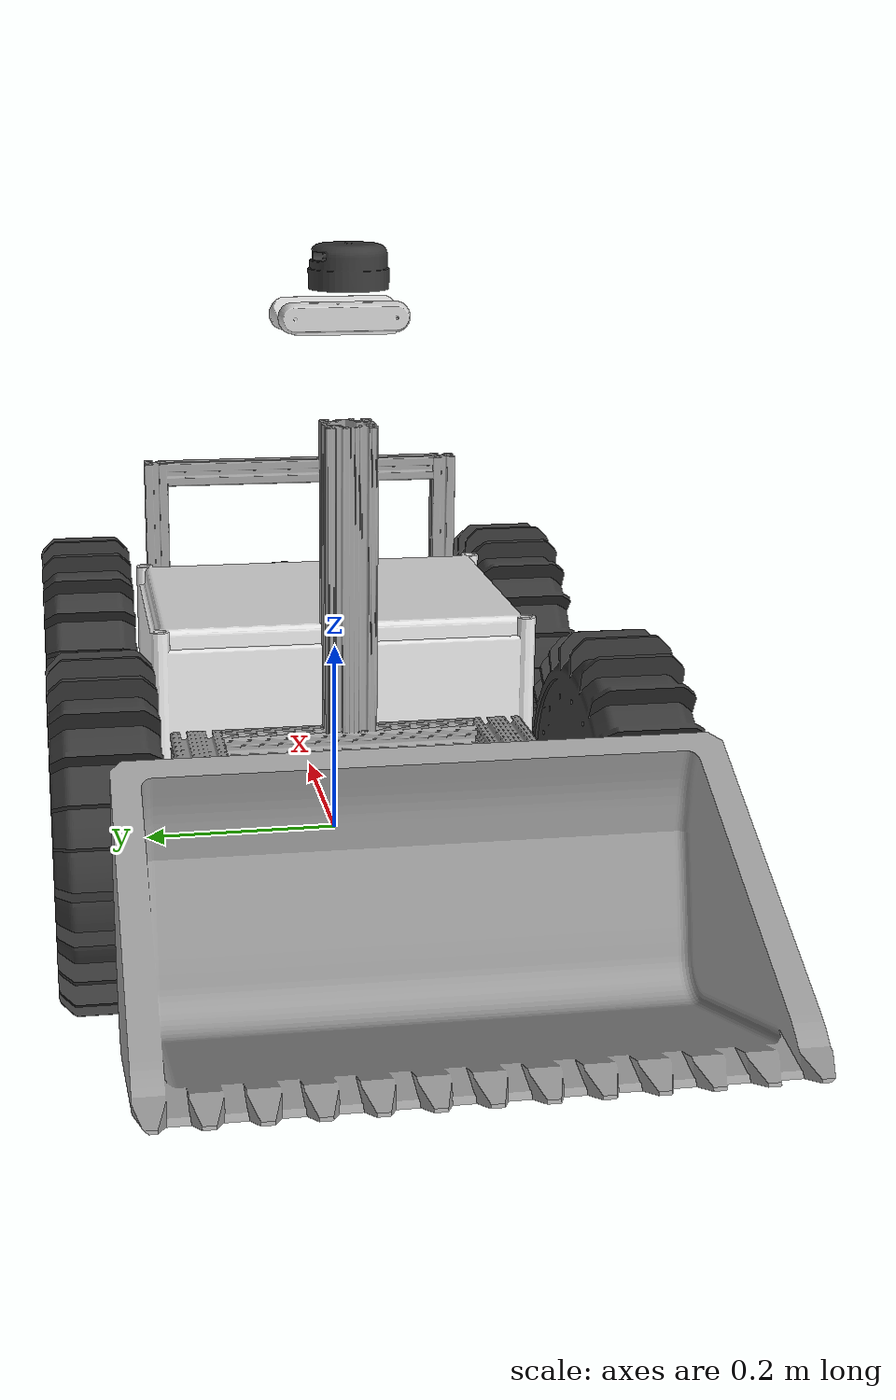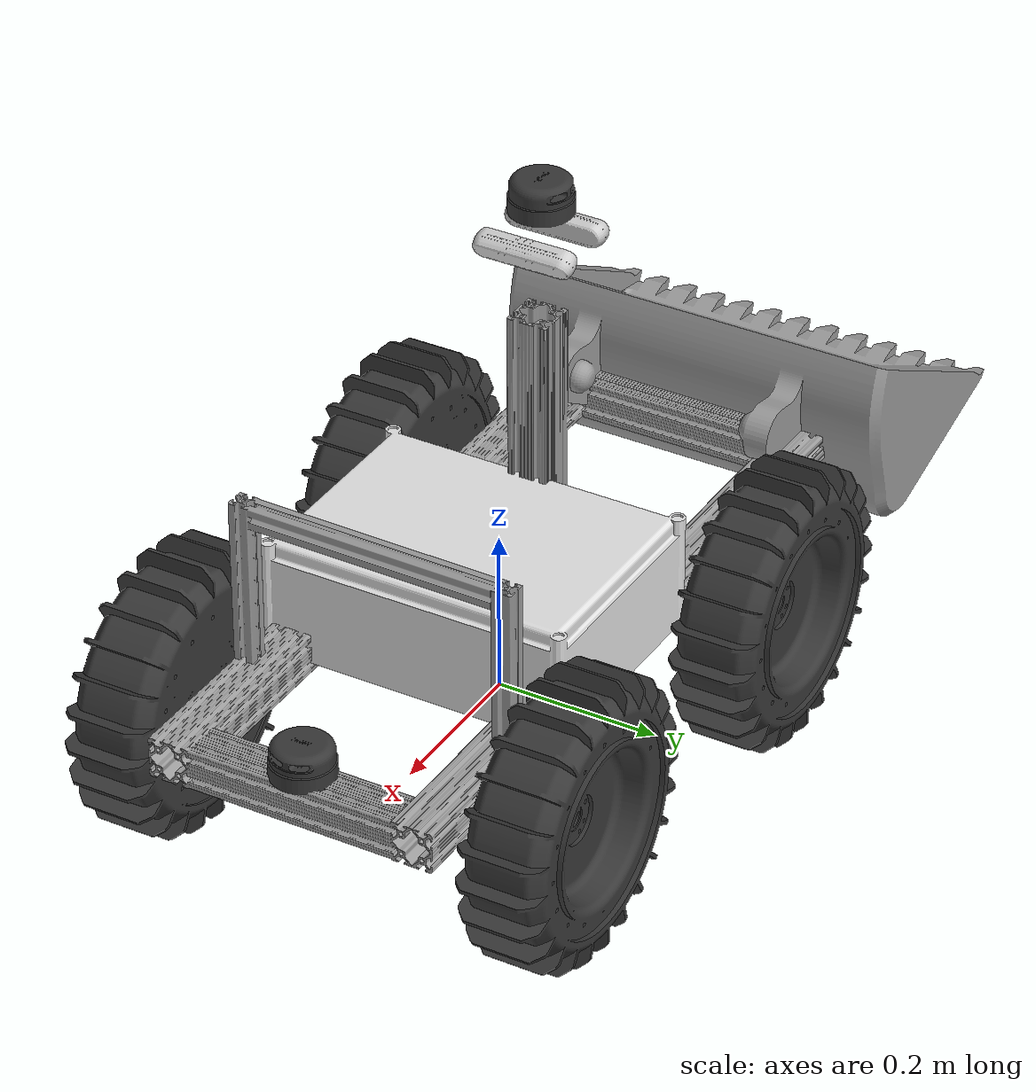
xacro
<?xml version="1.0"?>
<robot name="bulldozer_bot"
  xmlns:xacro="http://www.ros.org/wiki/xacro">

  <material name="light_grey">
    <color rgba="0.61 0.61 0.61 1.0" />
  </material>

  <material name="camera_grey">
    <color rgba="0.81 0.81 0.81 1.0" />
  </material>

  <material name="black">
    <color rgba="0.22 0.22 0.22 1.0" />
  </material>

  <material name="white">
    <color rgba="0.89 0.89 0.89 1.0" />
  </material>

  <link name="base_link">
    <visual>
      <geometry>
        <mesh filename="file:///$(find lunabot_simulation)/meshes/base_link.stl" />
      </geometry>
      <origin xyz="0 0 0.1625" rpy="0 0 0" />
      <material name="light_grey" />
    </visual>
    <collision>
      <geometry>
        <mesh filename="file:///$(find lunabot_simulation)/meshes/base_link.stl" />
      </geometry>
      <origin xyz="0 0 0.085" rpy="0 0 0" />
    </collision>
    <inertial>
      <mass value="25.0" />
      <origin xyz="0 0 0.085" />
      <inertia ixx="1.3669" ixy="0.0" ixz="0.0" iyy="3.3602" iyz="0.0" izz="4.7271" />
    </inertial>
  </link>

  <link name="ebox_link">
    <visual>
      <geometry>
        <mesh filename="file:///$(find lunabot_simulation)/meshes/ebox_link.stl" />
      </geometry>
      <origin xyz="0 0 0" rpy="0 0 0" />
      <material name="white" />
    </visual>
    <collision>
      <geometry>
        <mesh filename="file:///$(find lunabot_simulation)/meshes/ebox_link.stl" />
      </geometry>
      <origin xyz="0 0 0" rpy="0 0 0" />
    </collision>
  </link>

  <link name="lidar1_link">
    <visual>
      <geometry>
        <mesh filename="file:///$(find lunabot_simulation)/meshes/lidar1_link.stl" />
      </geometry>
      <origin xyz="0 0 0" rpy="0 0 -1.5708" />
      <material name="black" />
    </visual>
    <collision>
      <geometry>
        <mesh filename="file:///$(find lunabot_simulation)/meshes/lidar1_link.stl" />
      </geometry>
      <origin xyz="0 0 0" rpy="0 0 -1.5708" />
    </collision>
  </link>

  <link name="blade_link">
    <visual>
      <geometry>
        <mesh filename="file:///$(find lunabot_simulation)/meshes/blade_link.stl" />
      </geometry>
      <origin xyz="0 0 0" rpy="0 0 0" />
      <material name="light_grey" />
    </visual>
    <collision>
      <geometry>
        <mesh filename="file:///$(find lunabot_simulation)/meshes/blade_link.stl" />
      </geometry>
      <origin xyz="0 0 0" rpy="0 0 0" />
    </collision>
    <inertial>
      <mass value="5.0" />
      <origin xyz="0 0 0" />
      <inertia ixx="0.0833" ixy="0.0" ixz="0.0" iyy="0.1667" iyz="0.0" izz="0.2333" />
    </inertial>
  </link>

  <link name="lidar2_link">
    <visual>
      <geometry>
        <mesh filename="file:///$(find lunabot_simulation)/meshes/lidar2_link.stl" />
      </geometry>
      <origin xyz="0 0 0" rpy="0 0 -3.14" />
      <material name="black" />
    </visual>
    <collision>
      <geometry>
        <mesh filename="file:///$(find lunabot_simulation)/meshes/lidar2_link.stl" />
      </geometry>
      <origin xyz="0 0 0" rpy="0 0 -3.14" />
    </collision>
  </link>

  <link name="d455_link">
    <visual>
      <geometry>
        <mesh filename="file:///$(find lunabot_simulation)/meshes/camera_link.stl" />
      </geometry>
      <origin xyz="0 0 0" rpy="0 0 0" />
      <material name="camera_grey" />
    </visual>
    <collision>
      <geometry>
        <mesh filename="file:///$(find lunabot_simulation)/meshes/camera_link.stl" />
      </geometry>
      <origin xyz="0 0 0" rpy="0 0 0" />
    </collision>
  </link>

  <link name="d455_optical_link"></link>

  <link name="d456_link">
    <visual>
      <geometry>
        <mesh filename="file:///$(find lunabot_simulation)/meshes/camera_link.stl" />
      </geometry>
      <origin xyz="0 0 0" rpy="0 0 0" />
      <material name="camera_grey" />
    </visual>
    <collision>
      <geometry>
        <mesh filename="file:///$(find lunabot_simulation)/meshes/camera_link.stl" />
      </geometry>
      <origin xyz="0 0 0" rpy="0 0 0" />
    </collision>
  </link>

  <link name="d456_optical_link"></link>

  <link name="imu_link"></link>

  <link name="front_right_wheel_link">
    <visual>
      <geometry>
        <mesh filename="file:///$(find lunabot_simulation)/meshes/wheel_link.stl" />
      </geometry>
      <origin xyz="0 0 0" rpy="1.5708 0 0" />
      <material name="black" />
    </visual>
    <inertial>
      <mass value="2.27" />
      <origin xyz="0 0 0" />
      <inertia ixx="0.0255" ixy="0.0" ixz="0.0" iyy="0.0255" iyz="0.0" izz="0.0510" />
    </inertial>
    <collision>
      <geometry>
        <mesh filename="file:///$(find lunabot_simulation)/meshes/wheel_link.stl" />
      </geometry>
      <origin xyz="0 0 0" rpy="1.5708 0 0" />
    </collision>
  </link>

  <link name="front_left_wheel_link">
    <visual>
      <geometry>
        <mesh filename="file:///$(find lunabot_simulation)/meshes/wheel_link.stl" />
      </geometry>
      <origin xyz="0 0 0" rpy="-1.5708 0 0" />
      <material name="black" />
    </visual>
    <inertial>
      <mass value="2.27" />
      <origin xyz="0 0 0" />
      <inertia ixx="0.0255" ixy="0.0" ixz="0.0" iyy="0.0255" iyz="0.0" izz="0.0510" />
    </inertial>
    <collision>
      <geometry>
        <mesh filename="file:///$(find lunabot_simulation)/meshes/wheel_link.stl" />
      </geometry>
      <origin xyz="0 0 0" rpy="-1.5708 0 0" />
    </collision>
  </link>

  <link name="rear_right_wheel_link">
    <visual>
      <geometry>
        <mesh filename="file:///$(find lunabot_simulation)/meshes/wheel_link.stl" />
      </geometry>
      <origin xyz="0 0 0" rpy="1.5708 0 0" />
      <material name="black" />
    </visual>
    <inertial>
      <mass value="2.27" />
      <origin xyz="0 0 0" />
      <inertia ixx="0.0255" ixy="0.0" ixz="0.0" iyy="0.0255" iyz="0.0" izz="0.0510" />
    </inertial>
    <collision>
      <geometry>
        <mesh filename="file:///$(find lunabot_simulation)/meshes/wheel_link.stl" />
      </geometry>
      <origin xyz="0 0 0" rpy="1.5708 0 0" />
    </collision>
  </link>

  <link name="rear_left_wheel_link">
    <visual>
      <geometry>
        <mesh filename="file:///$(find lunabot_simulation)/meshes/wheel_link.stl" />
      </geometry>
      <origin xyz="0 0 0" rpy="-1.5708 0 0" />
      <material name="black" />
    </visual>
    <inertial>
      <mass value="2.27" />
      <origin xyz="0 0 0" />
      <inertia ixx="0.0255" ixy="0.0" ixz="0.0" iyy="0.0255" iyz="0.0" izz="0.0510" />
    </inertial>
    <collision>
      <geometry>
        <mesh filename="file:///$(find lunabot_simulation)/meshes/wheel_link.stl" />
      </geometry>
      <origin xyz="0 0 0" rpy="-1.5708 0 0" />
    </collision>
  </link>

  <joint name="base_rear_right_wheel_joint" type="continuous">
    <parent link="base_link" />
    <child link="rear_right_wheel_link" />
    <origin xyz="-0.19 -0.25 0.085" rpy="0 0 0" />
    <axis xyz="0 1 0" />
  </joint>

  <joint name="base_rear_left_wheel_joint" type="continuous">
    <parent link="base_link" />
    <child link="rear_left_wheel_link" />
    <origin xyz="-0.19 0.25 0.085" rpy="0 0 0" />
    <axis xyz="0 1 0" />
  </joint>

  <joint name="base_front_right_wheel_joint" type="continuous">
    <parent link="base_link" />
    <child link="front_right_wheel_link" />
    <origin xyz="0.28 -0.25 0.085" rpy="0 0 0" />
    <axis xyz="0 1 0" />
  </joint>

  <joint name="base_front_left_wheel_joint" type="continuous">
    <parent link="base_link" />
    <child link="front_left_wheel_link" />
    <origin xyz="0.28 0.25 0.085" rpy="0 0 0" />
    <axis xyz="0 1 0" />
  </joint>

  <joint name="base_lidar1_joint" type="fixed">
    <parent link="base_link" />
    <child link="lidar1_link" />
    <origin xyz="-0.0925 0 0.6075" rpy="0 0 0" />
  </joint>

  <joint name="base_lidar2_joint" type="fixed">
    <parent link="base_link" />
    <child link="lidar2_link" />
    <origin xyz="0.425 0 0.1708" rpy="0 0 0" />
  </joint>

  <joint name="base_ebox_joint" type="fixed">
    <parent link="base_link" />
    <child link="ebox_link" />
    <origin xyz="0.06 0 0.22" rpy="0 0 0" />
  </joint>

  <joint name="base_blade_joint" type="revolute">
    <parent link="base_link" />
    <child link="blade_link" />
    <origin xyz="-0.55 0.0 0.14" rpy="0 -0.4 3.14" />
    <axis xyz="0 1 0" />
    <limit effort="100" velocity="1.0" lower="-0.75" upper="0.75" />
    <dynamics damping="0.0" friction="0.0" />
  </joint>

  <joint name="base_d455_joint" type="fixed">
    <parent link="base_link" />
    <child link="d455_link" />
    <origin xyz="-0.12 0 0.55" rpy="0 0 0" />
  </joint>

  <joint name="d455_optical_joint" type="fixed">
    <parent link="d455_link" />
    <child link="d455_optical_link" />
    <origin xyz="0 0 0" rpy="-1.5708 0 1.5708" />
  </joint>

  <joint name="base_d456_joint" type="fixed">
    <parent link="base_link" />
    <child link="d456_link" />
    <origin xyz="-0.05 0 0.55" rpy="0 0.523599 0" />
  </joint>

  <joint name="d456_optical_joint" type="fixed">
    <parent link="d456_link" />
    <child link="d456_optical_link" />
    <origin xyz="0 0 0" rpy="-1.047201 0 -1.5708" />
  </joint>

  <joint name="imu_joint" type="fixed">
    <parent link="base_link" />
    <child link="imu_link" />
    <origin xyz="0 0 0" rpy="0 0 0" />
  </joint>

  <gazebo reference="base_link">
    <material>Gazebo/Grey</material>
  </gazebo>

  <gazebo reference="ebox_link">
    <material>Gazebo/White</material>
  </gazebo>

  <gazebo reference="blade_link">
    <material>Gazebo/Grey</material>
  </gazebo>

  <gazebo reference="front_right_wheel_link">
    <material>Gazebo/DarkGrey</material>
    <mu>1.0</mu>
    <mu2>1.0</mu2>
    <surface>
      <contact>
        <ode>
          <kp>1000000</kp>
          <kd>500</kd>
          <slip1>0.02</slip1>
          <slip2>0.02</slip2>
        </ode>
      </contact>
    </surface>
  </gazebo>

  <gazebo reference="front_left_wheel_link">
    <material>Gazebo/DarkGrey</material>
    <mu>1.0</mu>
    <mu2>1.0</mu2>
    <surface>
      <contact>
        <ode>
          <kp>1000000</kp>
          <kd>500</kd>
          <slip1>0.02</slip1>
          <slip2>0.02</slip2>
        </ode>
      </contact>
    </surface>
  </gazebo>

  <gazebo reference="rear_right_wheel_link">
    <material>Gazebo/DarkGrey</material>
    <mu>1.0</mu>
    <mu2>1.0</mu2>
    <surface>
      <contact>
        <ode>
          <kp>1000000</kp>
          <kd>500</kd>
          <slip1>0.02</slip1>
          <slip2>0.02</slip2>
        </ode>
      </contact>
    </surface>
  </gazebo>

  <gazebo reference="rear_left_wheel_link">
    <material>Gazebo/DarkGrey</material>
    <mu>1.0</mu>
    <mu2>1.0</mu2>
    <surface>
      <contact>
        <ode>
          <kp>1000000</kp>
          <kd>500</kd>
          <slip1>0.02</slip1>
          <slip2>0.02</slip2>
        </ode>
      </contact>
    </surface>
  </gazebo>

  <gazebo reference="d455_link">
    <sensor type="depth" name="d455">
      <pose>0 0 0 0 0 3.14</pose>
      <update_rate>60.0</update_rate>
      <visualize>true</visualize>
      <camera>
        <horizontal_fov>1.540</horizontal_fov>
        <image>
          <width>640</width>
          <height>360</height>
          <format>R8G8B8</format>
        </image>
        <distortion>
          <k1>-0.06792929080519726</k1>
          <k2>0.08058277259698843</k2>
          <k3>-0.04417756393089296</k3>
          <p1>-0.001690544521662593</p1>
          <p2>-0.0008235437909836152</p2>
        </distortion>
        <clip>
          <near>0.05</near>
          <far>10.0</far>
        </clip>
      </camera>
      <plugin name="camera1_controller" filename="libgazebo_ros_camera.so">
        <ros>
          <remapping>/d455/image_raw:=/d455/color/image_raw</remapping>
          <remapping>/d455/points:=/d455/color/points</remapping>
          <remapping>/d455/camera_info:=/d455/color/camera_info</remapping>
          <remapping>/d455/depth/image_raw:=/d455/depth/image_rect_raw</remapping>
        </ros>
        <frame_name>d455_optical_link</frame_name>
        <publish_tf>false</publish_tf>
        <publish_point_cloud>true</publish_point_cloud>
      </plugin>
    </sensor>
    <material>Gazebo/Grey</material>
  </gazebo>

  <gazebo reference="d456_link">
    <sensor type="depth" name="d456">
      <pose>0 0 0 0 -0.523599 0</pose>
      <update_rate>60.0</update_rate>
      <visualize>true</visualize>
      <camera>
        <horizontal_fov>1.540</horizontal_fov>
        <image>
          <width>640</width>
          <height>360</height>
          <format>R8G8B8</format>
        </image>
        <distortion>
          <k1>-0.06792929080519726</k1>
          <k2>0.08058277259698843</k2>
          <k3>-0.04417756393089296</k3>
          <p1>-0.001690544521662593</p1>
          <p2>-0.0008235437909836152</p2>
        </distortion>
        <clip>
          <near>0.05</near>
          <far>10.0</far>
        </clip>
      </camera>
      <plugin name="camera2_controller" filename="libgazebo_ros_camera.so">
        <ros>
          <remapping>/d456/image_raw:=/d456/color/image_raw</remapping>
          <remapping>/d456/points:=/d456/color/points</remapping>
          <remapping>/d456/camera_info:=/d456/color/camera_info</remapping>
          <remapping>/d456/depth/image_raw:=/d456/depth/image_rect_raw</remapping>
        </ros>
        <frame_name>d456_optical_link</frame_name>
        <publish_tf>false</publish_tf>
        <publish_point_cloud>true</publish_point_cloud>
      </plugin>
    </sensor>
    <material>Gazebo/Grey</material>
  </gazebo>

  <gazebo reference="lidar1_link">
    <sensor type="ray" name="lidar1_link">
      <pose>0 0 0 0 0 0</pose>
      <visualize>false</visualize>
      <update_rate>50.0</update_rate>
      <ray>
        <scan>
          <horizontal>
            <samples>1080</samples>
            <resolution>0.5</resolution>
            <min_angle>-3.14</min_angle>
            <max_angle>3.14</max_angle>
          </horizontal>
        </scan>
        <range>
          <min>0.1</min>
          <max>10.0</max>
        </range>
        <noise>
          <type>gaussian</type>
          <mean>0.0</mean>
          <stddev>0.01</stddev>
        </noise>
      </ray>
      <plugin name="lidar1_controller" filename="libgazebo_ros_ray_sensor.so">
        <frame_name>lidar1_link</frame_name>
        <ros>
          <remapping>~/out:=/scan</remapping>
        </ros>
        <output_type>sensor_msgs/LaserScan</output_type>
        <publish_tf>false</publish_tf>
      </plugin>
    </sensor>
    <material>Gazebo/Black</material>
  </gazebo>

  <gazebo reference="lidar2_link">
    <sensor type="ray" name="lidar2_link">
      <pose>0 0 0 0 0 0</pose>
      <visualize>false</visualize>
      <update_rate>50.0</update_rate>
      <ray>
        <scan>
          <horizontal>
            <samples>1080</samples>
            <resolution>0.5</resolution>
            <min_angle>-1.57</min_angle>
            <max_angle>1.57</max_angle>
          </horizontal>
        </scan>
        <range>
          <min>0.1</min>
          <max>10.0</max>
        </range>
        <noise>
          <type>gaussian</type>
          <mean>0.0</mean>
          <stddev>0.01</stddev>
        </noise>
      </ray>
      <plugin name="lidar2_controller" filename="libgazebo_ros_ray_sensor.so">
        <frame_name>lidar2_link</frame_name>
        <ros>
          <remapping>~/out:=/scan2</remapping>
        </ros>
        <output_type>sensor_msgs/LaserScan</output_type>
        <publish_tf>false</publish_tf>
      </plugin>
    </sensor>
    <material>Gazebo/Black</material>
  </gazebo>

  <gazebo reference="imu_link">
    <gravity>false</gravity>
    <sensor name="imu_sensor" type="imu">
      <always_on>true</always_on>
      <update_rate>50</update_rate>
      <visualize>true</visualize>
      <plugin filename="libgazebo_ros_imu_sensor.so" name="imu_plugin">
        <ros>
          <namespace></namespace>
          <remapping>~/out:=/d456/imu/data</remapping>
        </ros>
        <bodyName>d456_link</bodyName>
        <gaussianNoise>0.0</gaussianNoise>
        <xyzOffset>0 0 0</xyzOffset>
        <rpyOffset>0 0 0</rpyOffset>
        <frameName>imu_link</frameName>
        <publish_tf>false</publish_tf>
        <initialOrientationAsReference>false</initialOrientationAsReference>
      </plugin>
      <pose>0 0 0 0 0 0</pose>
    </sensor>
  </gazebo>

  <gazebo>
    <plugin name="gazebo_ros2_control" filename="libgazebo_ros2_control.so">
      <robot_param>robot_description</robot_param>
      <robot_param_node>robot_state_publisher</robot_param_node>
      <parameters>$(find lunabot_config)/params/gazebo_params.yaml</parameters>
    </plugin>
  </gazebo>

  <ros2_control name="GazeboSystem" type="system">
    <hardware>
      <plugin>gazebo_ros2_control/GazeboSystem</plugin>
    </hardware>
    <joint name="base_blade_joint">
      <command_interface name="position" />
      <state_interface name="position" />
      <state_interface name="velocity" />
    </joint>
    <joint name="base_front_right_wheel_joint">
      <command_interface name="velocity">
        <param name="min">-1</param>
        <param name="max">1</param>
      </command_interface>
      <state_interface name="position" />
      <state_interface name="velocity" />
    </joint>
    <joint name="base_front_left_wheel_joint">
      <command_interface name="velocity">
        <param name="min">-1</param>
        <param name="max">1</param>
      </command_interface>
      <state_interface name="position" />
      <state_interface name="velocity" />
    </joint>
    <joint name="base_rear_right_wheel_joint">
      <command_interface name="velocity">
        <param name="min">-1</param>
        <param name="max">1</param>
      </command_interface>
      <state_interface name="position" />
      <state_interface name="velocity" />
    </joint>
    <joint name="base_rear_left_wheel_joint">
      <command_interface name="velocity">
        <param name="min">-1</param>
        <param name="max">1</param>
      </command_interface>
      <state_interface name="position" />
      <state_interface name="velocity" />
    </joint>
  </ros2_control>

  <transmission name="transmission_base_blade_joint">
    <plugin>transmission_interface/SimpleTransmission</plugin>
    <actuator name="actuator_base_blade_joint" role="actuator_base_blade_joint" />
    <joint name="base_blade_joint" role="base_blade_joint">
      <mechanical_reduction>1.0</mechanical_reduction>
    </joint>
  </transmission>
</robot>
